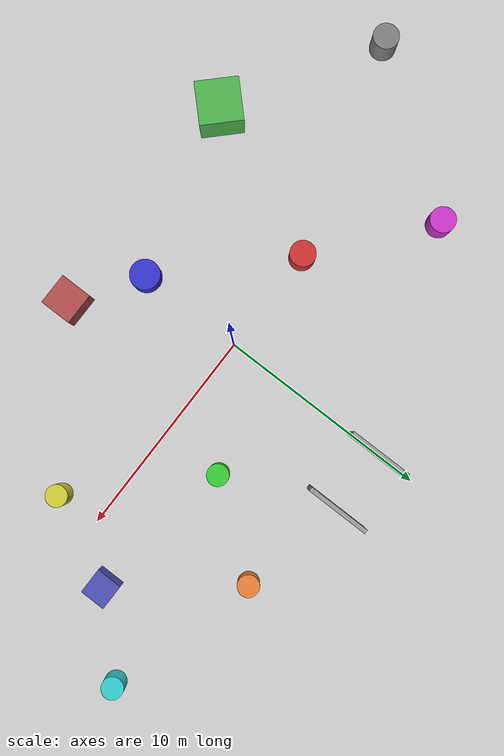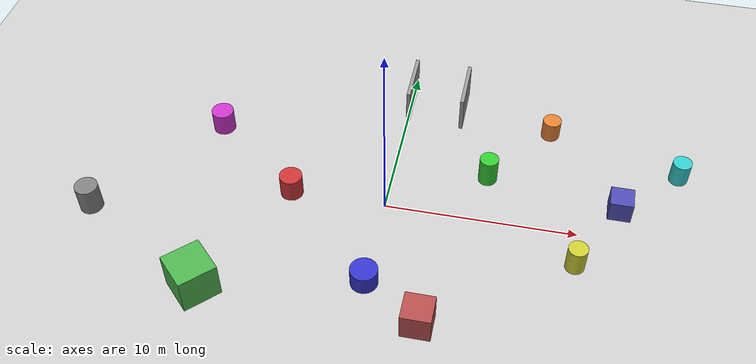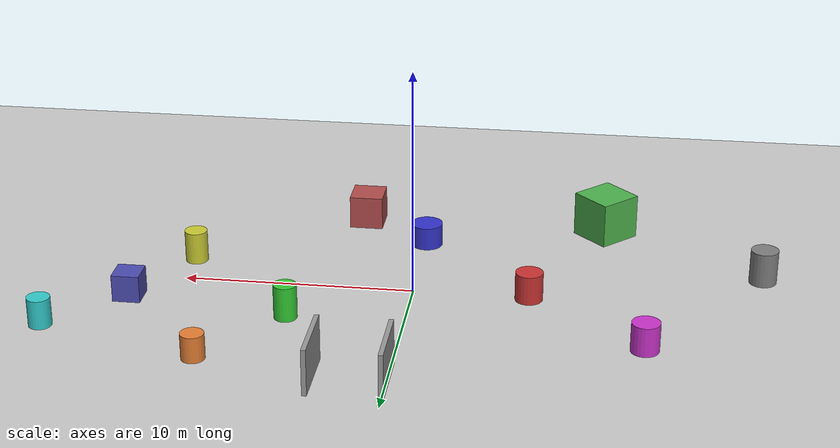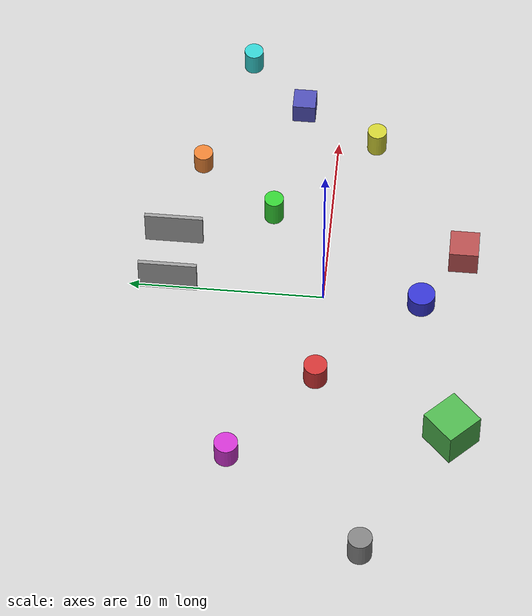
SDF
<?xml version="1.0" ?>
<sdf version="1.6">
  <world name="fast_planner_world">

    <!-- Physics settings for realistic quadrotor simulation -->
    <physics type="ode">
      <max_step_size>0.001</max_step_size>
      <real_time_factor>1.0</real_time_factor>
      <real_time_update_rate>1000</real_time_update_rate>
      <gravity>0 0 -9.81</gravity>
      <ode>
        <solver>
          <type>quick</type>
          <iters>50</iters>
          <sor>1.3</sor>
        </solver>
        <constraints>
          <cfm>0.0</cfm>
          <erp>0.2</erp>
          <contact_max_correcting_vel>100.0</contact_max_correcting_vel>
          <contact_surface_layer>0.001</contact_surface_layer>
        </constraints>
      </ode>
    </physics>

    <!-- Scene lighting for depth camera -->
    <scene>
      <ambient>0.5 0.5 0.5 1.0</ambient>
      <shadows>false</shadows>
      <grid>false</grid>
    </scene>

    <!-- Sun for realistic lighting -->
    <include>
      <uri>model://sun</uri>
    </include>

    <!-- Ground plane -->
    <include>
      <uri>model://ground_plane</uri>
    </include>

    <!-- Cylindrical obstacles - strategically placed for testing -->
    <!-- Central corridor obstacles -->
    <model name="cylinder_1">
      <static>true</static>
      <pose>-5 0 0 0 0 0</pose>
      <link name="link">
        <collision name="collision">
          <geometry>
            <cylinder>
              <radius>0.6</radius>
              <length>2.5</length>
            </cylinder>
          </geometry>
        </collision>
        <visual name="visual">
          <geometry>
            <cylinder>
              <radius>0.6</radius>
              <length>2.5</length>
            </cylinder>
          </geometry>
          <material>
            <ambient>0.8 0.2 0.2 1.0</ambient>
            <diffuse>0.8 0.2 0.2 1.0</diffuse>
          </material>
        </visual>
      </link>
    </model>

    <model name="cylinder_2">
      <static>true</static>
      <pose>5 3 0 0 0 0</pose>
      <link name="link">
        <collision name="collision">
          <geometry>
            <cylinder>
              <radius>0.5</radius>
              <length>3.0</length>
            </cylinder>
          </geometry>
        </collision>
        <visual name="visual">
          <geometry>
            <cylinder>
              <radius>0.5</radius>
              <length>3.0</length>
            </cylinder>
          </geometry>
          <material>
            <ambient>0.2 0.8 0.2 1.0</ambient>
            <diffuse>0.2 0.8 0.2 1.0</diffuse>
          </material>
        </visual>
      </link>
    </model>

    <model name="cylinder_3">
      <static>true</static>
      <pose>0 -5 0 0 0 0</pose>
      <link name="link">
        <collision name="collision">
          <geometry>
            <cylinder>
              <radius>0.7</radius>
              <length>2.0</length>
            </cylinder>
          </geometry>
        </collision>
        <visual name="visual">
          <geometry>
            <cylinder>
              <radius>0.7</radius>
              <length>2.0</length>
            </cylinder>
          </geometry>
          <material>
            <ambient>0.2 0.2 0.8 1.0</ambient>
            <diffuse>0.2 0.2 0.8 1.0</diffuse>
          </material>
        </visual>
      </link>
    </model>

    <model name="cylinder_4">
      <static>true</static>
      <pose>10 -2 0 0 0 0</pose>
      <link name="link">
        <collision name="collision">
          <geometry>
            <cylinder>
              <radius>0.5</radius>
              <length>2.8</length>
            </cylinder>
          </geometry>
        </collision>
        <visual name="visual">
          <geometry>
            <cylinder>
              <radius>0.5</radius>
              <length>2.8</length>
            </cylinder>
          </geometry>
          <material>
            <ambient>0.8 0.8 0.2 1.0</ambient>
            <diffuse>0.8 0.8 0.2 1.0</diffuse>
          </material>
        </visual>
      </link>
    </model>

    <model name="cylinder_5">
      <static>true</static>
      <pose>-10 4 0 0 0 0</pose>
      <link name="link">
        <collision name="collision">
          <geometry>
            <cylinder>
              <radius>0.6</radius>
              <length>2.5</length>
            </cylinder>
          </geometry>
        </collision>
        <visual name="visual">
          <geometry>
            <cylinder>
              <radius>0.6</radius>
              <length>2.5</length>
            </cylinder>
          </geometry>
          <material>
            <ambient>0.8 0.2 0.8 1.0</ambient>
            <diffuse>0.8 0.2 0.8 1.0</diffuse>
          </material>
        </visual>
      </link>
    </model>

    <!-- More obstacles for complex scenarios -->
    <model name="cylinder_6">
      <static>true</static>
      <pose>15 5 0 0 0 0</pose>
      <link name="link">
        <collision name="collision">
          <geometry>
            <cylinder>
              <radius>0.5</radius>
              <length>2.5</length>
            </cylinder>
          </geometry>
        </collision>
        <visual name="visual">
          <geometry>
            <cylinder>
              <radius>0.5</radius>
              <length>2.5</length>
            </cylinder>
          </geometry>
          <material>
            <ambient>0.2 0.8 0.8 1.0</ambient>
            <diffuse>0.2 0.8 0.8 1.0</diffuse>
          </material>
        </visual>
      </link>
    </model>

    <model name="cylinder_7">
      <static>true</static>
      <pose>-15 -3 0 0 0 0</pose>
      <link name="link">
        <collision name="collision">
          <geometry>
            <cylinder>
              <radius>0.6</radius>
              <length>3.0</length>
            </cylinder>
          </geometry>
        </collision>
        <visual name="visual">
          <geometry>
            <cylinder>
              <radius>0.6</radius>
              <length>3.0</length>
            </cylinder>
          </geometry>
          <material>
            <ambient>0.5 0.5 0.5 1.0</ambient>
            <diffuse>0.5 0.5 0.5 1.0</diffuse>
          </material>
        </visual>
      </link>
    </model>

    <model name="cylinder_8">
      <static>true</static>
      <pose>8 7 0 0 0 0</pose>
      <link name="link">
        <collision name="collision">
          <geometry>
            <cylinder>
              <radius>0.5</radius>
              <length>2.2</length>
            </cylinder>
          </geometry>
        </collision>
        <visual name="visual">
          <geometry>
            <cylinder>
              <radius>0.5</radius>
              <length>2.2</length>
            </cylinder>
          </geometry>
          <material>
            <ambient>0.9 0.5 0.2 1.0</ambient>
            <diffuse>0.9 0.5 0.2 1.0</diffuse>
          </material>
        </visual>
      </link>
    </model>

    <!-- Box obstacles for variety -->
    <model name="box_1">
      <static>true</static>
      <pose>3 -7 0.75 0 0 0</pose>
      <link name="link">
        <collision name="collision">
          <geometry>
            <box>
              <size>1.5 1.5 1.5</size>
            </box>
          </geometry>
        </collision>
        <visual name="visual">
          <geometry>
            <box>
              <size>1.5 1.5 1.5</size>
            </box>
          </geometry>
          <material>
            <ambient>0.7 0.3 0.3 1.0</ambient>
            <diffuse>0.7 0.3 0.3 1.0</diffuse>
          </material>
        </visual>
      </link>
    </model>

    <model name="box_2">
      <static>true</static>
      <pose>-8 -7 1.0 0 0 0.785</pose>
      <link name="link">
        <collision name="collision">
          <geometry>
            <box>
              <size>2.0 2.0 2.0</size>
            </box>
          </geometry>
        </collision>
        <visual name="visual">
          <geometry>
            <box>
              <size>2.0 2.0 2.0</size>
            </box>
          </geometry>
          <material>
            <ambient>0.3 0.7 0.3 1.0</ambient>
            <diffuse>0.3 0.7 0.3 1.0</diffuse>
          </material>
        </visual>
      </link>
    </model>

    <model name="box_3">
      <static>true</static>
      <pose>12 2 0.6 0 0 0</pose>
      <link name="link">
        <collision name="collision">
          <geometry>
            <box>
              <size>1.2 1.2 1.2</size>
            </box>
          </geometry>
        </collision>
        <visual name="visual">
          <geometry>
            <box>
              <size>1.2 1.2 1.2</size>
            </box>
          </geometry>
          <material>
            <ambient>0.3 0.3 0.7 1.0</ambient>
            <diffuse>0.3 0.3 0.7 1.0</diffuse>
          </material>
        </visual>
      </link>
    </model>

    <!-- Narrow passage for testing -->
    <model name="wall_left">
      <static>true</static>
      <pose>0 8 1.0 0 0 0</pose>
      <link name="link">
        <collision name="collision">
          <geometry>
            <box>
              <size>0.2 3.0 2.0</size>
            </box>
          </geometry>
        </collision>
        <visual name="visual">
          <geometry>
            <box>
              <size>0.2 3.0 2.0</size>
            </box>
          </geometry>
          <material>
            <ambient>0.6 0.6 0.6 1.0</ambient>
            <diffuse>0.6 0.6 0.6 1.0</diffuse>
          </material>
        </visual>
      </link>
    </model>

    <model name="wall_right">
      <static>true</static>
      <pose>3 8 1.0 0 0 0</pose>
      <link name="link">
        <collision name="collision">
          <geometry>
            <box>
              <size>0.2 3.0 2.0</size>
            </box>
          </geometry>
        </collision>
        <visual name="visual">
          <geometry>
            <box>
              <size>0.2 3.0 2.0</size>
            </box>
          </geometry>
          <material>
            <ambient>0.6 0.6 0.6 1.0</ambient>
            <diffuse>0.6 0.6 0.6 1.0</diffuse>
          </material>
        </visual>
      </link>
    </model>

  </world>
</sdf>
